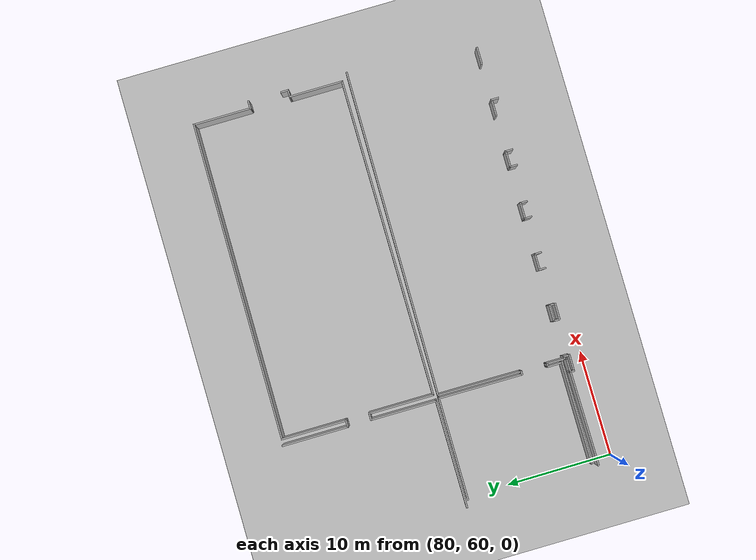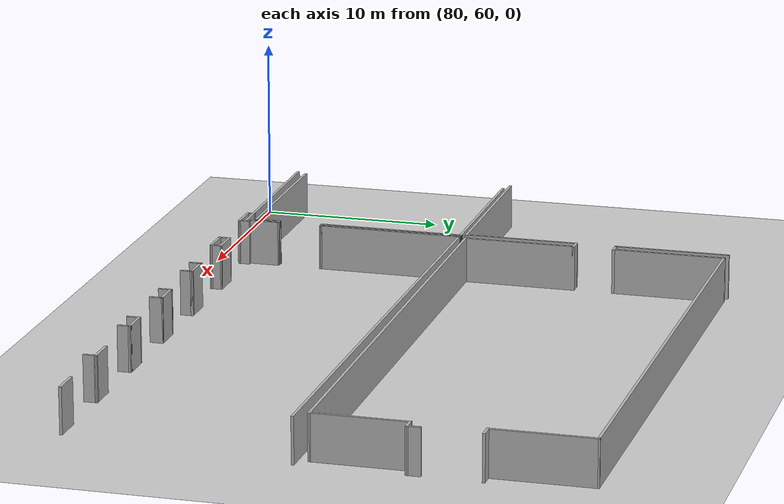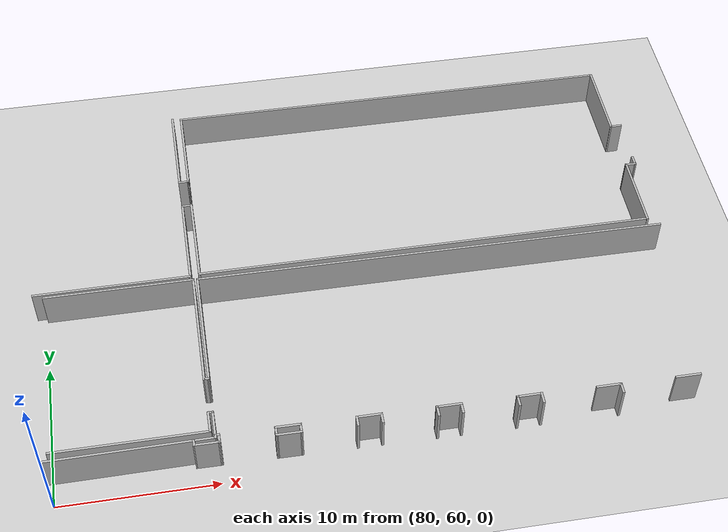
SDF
<sdf version="1.6">
 <world name="default">
  <model name="ground_plane">
   <static>1</static>
   <link name="link">
    <collision name="collision">
     <geometry><plane><normal>0 0 1</normal><size>200 100</size></plane></geometry>
     <surface><friction><ode><mu>100</mu><mu2>50</mu2></ode></friction></surface>
    </collision>
    <visual name="visual">
     <cast_shadows>0</cast_shadows>
     <geometry><plane><normal>0 0 1</normal><size>200 100</size></plane></geometry>
     <material>
      <script><uri>file://media/materials/scripts/gazebo.material</uri><name>Gazebo/Grey</name></script>
     </material>
    </visual>
   </link>
  </model>
  <model name="vgke_production">
   <link name="Wall_242">
    <pose>-13.7532 14.7543 0 0 -0 0</pose>
    <visual name="Wall_242_Visual">
     <pose>0 0 1.25 0 -0 0</pose>
     <geometry><box><size>9.75 0.15 2.5</size></box></geometry>
    </visual>
    <collision name="Wall_242_Collision">
     <pose>0 0 1.25 0 -0 0</pose>
     <geometry><box><size>9.75 0.15 2.5</size></box></geometry>
    </collision>
    <inertial>
     <inertia><ixx>1</ixx><ixy>0</ixy><ixz>0</ixz><iyy>1</iyy><iyz>0</iyz><izz>1</izz></inertia>
     <mass>1</mass>
    </inertial>
   </link>
   <link name="Wall_243">
    <pose>-8.95321 15.4293 0 0 -0 1.5708</pose>
    <visual name="Wall_243_Visual">
     <pose>0 0 1.25 0 -0 0</pose>
     <geometry><box><size>1.5 0.15 2.5</size></box></geometry>
    </visual>
    <collision name="Wall_243_Collision">
     <pose>0 0 1.25 0 -0 0</pose>
     <geometry><box><size>1.5 0.15 2.5</size></box></geometry>
    </collision>
    <inertial>
     <inertia><ixx>1</ixx><ixy>0</ixy><ixz>0</ixz><iyy>1</iyy><iyz>0</iyz><izz>1</izz></inertia>
     <mass>1</mass>
    </inertial>
   </link>
   <link name="Wall_244">
    <pose>-8.81949 16.1031 0 0 0 -0.009091</pose>
    <visual name="Wall_244_Visual">
     <pose>0 0 1.25 0 -0 0</pose>
     <geometry><box><size>0.417445 0.15 2.5</size></box></geometry>
    </visual>
    <collision name="Wall_244_Collision">
     <pose>0 0 1.25 0 -0 0</pose>
     <geometry><box><size>0.417445 0.15 2.5</size></box></geometry>
    </collision>
    <inertial>
     <inertia><ixx>1</ixx><ixy>0</ixy><ixz>0</ixz><iyy>1</iyy><iyz>0</iyz><izz>1</izz></inertia>
     <mass>1</mass>
    </inertial>
   </link>
   <link name="Wall_245">
    <pose>-8.68736 15.1888 0 0 0 -1.57253</pose>
    <visual name="Wall_245_Visual">
     <pose>0 0 1.25 0 -0 0</pose>
     <geometry><box><size>1.97616 0.15 2.5</size></box></geometry>
    </visual>
    <collision name="Wall_245_Collision">
     <pose>0 0 1.25 0 -0 0</pose>
     <geometry><box><size>1.97616 0.15 2.5</size></box></geometry>
    </collision>
    <inertial>
     <inertia><ixx>1</ixx><ixy>0</ixy><ixz>0</ixz><iyy>1</iyy><iyz>0</iyz><izz>1</izz></inertia>
     <mass>1</mass>
    </inertial>
   </link>
   <link name="Wall_247">
    <pose>-13.7798 14.2411 0 0 0 -3.1348</pose>
    <visual name="Wall_247_Visual">
     <pose>0 0 1.25 0 -0 0</pose>
     <geometry><box><size>10.332 0.15 2.5</size></box></geometry>
    </visual>
    <collision name="Wall_247_Collision">
     <pose>0 0 1.25 0 -0 0</pose>
     <geometry><box><size>10.332 0.15 2.5</size></box></geometry>
    </collision>
    <inertial>
     <inertia><ixx>1</ixx><ixy>0</ixy><ixz>0</ixz><iyy>1</iyy><iyz>0</iyz><izz>1</izz></inertia>
     <mass>1</mass>
    </inertial>
   </link>
   <link name="Wall_259">
    <pose>-14.145 26.8509 0 0 -0 0</pose>
    <visual name="Wall_259_Visual">
     <pose>0 0 1.25 0 -0 0</pose>
     <geometry><box><size>10.25 0.15 2.5</size></box></geometry>
    </visual>
    <collision name="Wall_259_Collision">
     <pose>0 0 1.25 0 -0 0</pose>
     <geometry><box><size>10.25 0.15 2.5</size></box></geometry>
    </collision>
    <inertial>
     <inertia><ixx>1</ixx><ixy>0</ixy><ixz>0</ixz><iyy>1</iyy><iyz>0</iyz><izz>1</izz></inertia>
     <mass>1</mass>
    </inertial>
   </link>
   <link name="Wall_263">
    <pose>-9.09463 29.9565 0 0 -0 1.57067</pose>
    <visual name="Wall_263_Visual">
     <pose>0 0 1.25 0 -0 0</pose>
     <geometry><box><size>6.36125 0.15 2.5</size></box></geometry>
    </visual>
    <collision name="Wall_263_Collision">
     <pose>0 0 1.25 0 -0 0</pose>
     <geometry><box><size>6.36125 0.15 2.5</size></box></geometry>
    </collision>
    <inertial>
     <inertia><ixx>1</ixx><ixy>0</ixy><ixz>0</ixz><iyy>1</iyy><iyz>0</iyz><izz>1</izz></inertia>
     <mass>1</mass>
    </inertial>
   </link>
   <link name="Wall_265">
    <pose>-8.79423 33.0621 0 0 -0 0</pose>
    <visual name="Wall_265_Visual">
     <pose>0 0 1.25 0 -0 0</pose>
     <geometry><box><size>0.75 0.15 2.5</size></box></geometry>
    </visual>
    <collision name="Wall_265_Collision">
     <pose>0 0 1.25 0 -0 0</pose>
     <geometry><box><size>0.75 0.15 2.5</size></box></geometry>
    </collision>
    <inertial>
     <inertia><ixx>1</ixx><ixy>0</ixy><ixz>0</ixz><iyy>1</iyy><iyz>0</iyz><izz>1</izz></inertia>
     <mass>1</mass>
    </inertial>
   </link>
   <link name="Wall_267">
    <pose>-8.49423 30.0121 0 0 0 -1.5708</pose>
    <visual name="Wall_267_Visual">
     <pose>0 0 1.25 0 -0 0</pose>
     <geometry><box><size>6.25 0.15 2.5</size></box></geometry>
    </visual>
    <collision name="Wall_267_Collision">
     <pose>0 0 1.25 0 -0 0</pose>
     <geometry><box><size>6.25 0.15 2.5</size></box></geometry>
    </collision>
    <inertial>
     <inertia><ixx>1</ixx><ixy>0</ixy><ixz>0</ixz><iyy>1</iyy><iyz>0</iyz><izz>1</izz></inertia>
     <mass>1</mass>
    </inertial>
   </link>
   <link name="Wall_268">
    <pose>6.55577 26.9621 0 0 -0 0</pose>
    <visual name="Wall_268_Visual">
     <pose>0 0 1.25 0 -0 0</pose>
     <geometry><box><size>30.25 0.15 2.5</size></box></geometry>
    </visual>
    <collision name="Wall_268_Collision">
     <pose>0 0 1.25 0 -0 0</pose>
     <geometry><box><size>30.25 0.15 2.5</size></box></geometry>
    </collision>
    <inertial>
     <inertia><ixx>1</ixx><ixy>0</ixy><ixz>0</ixz><iyy>1</iyy><iyz>0</iyz><izz>1</izz></inertia>
     <mass>1</mass>
    </inertial>
   </link>
   <link name="Wall_271">
    <pose>21.6031 29.4788 0 0 -0 1.57186</pose>
    <visual name="Wall_271_Visual">
     <pose>0 0 1.25 0 -0 0</pose>
     <geometry><box><size>5.18328 0.15 2.5</size></box></geometry>
    </visual>
    <collision name="Wall_271_Collision">
     <pose>0 0 1.25 0 -0 0</pose>
     <geometry><box><size>5.18328 0.15 2.5</size></box></geometry>
    </collision>
    <inertial>
     <inertia><ixx>1</ixx><ixy>0</ixy><ixz>0</ixz><iyy>1</iyy><iyz>0</iyz><izz>1</izz></inertia>
     <mass>1</mass>
    </inertial>
   </link>
   <link name="Wall_273">
    <pose>21.9117 31.995 0 0 0 -0.001167</pose>
    <visual name="Wall_273_Visual">
     <pose>0 0 1.25 0 -0 0</pose>
     <geometry><box><size>0.77253 0.15 2.5</size></box></geometry>
    </visual>
    <collision name="Wall_273_Collision">
     <pose>0 0 1.25 0 -0 0</pose>
     <geometry><box><size>0.77253 0.15 2.5</size></box></geometry>
    </collision>
    <inertial>
     <inertia><ixx>1</ixx><ixy>0</ixy><ixz>0</ixz><iyy>1</iyy><iyz>0</iyz><izz>1</izz></inertia>
     <mass>1</mass>
    </inertial>
   </link>
   <link name="Wall_293">
    <pose>6.80106 26.4354 0 0 -0 3.13474</pose>
    <visual name="Wall_293_Visual">
     <pose>0 0 1.25 0 -0 0</pose>
     <geometry><box><size>31.0776 0.15 2.5</size></box></geometry>
    </visual>
    <collision name="Wall_293_Collision">
     <pose>0 0 1.25 0 -0 0</pose>
     <geometry><box><size>31.0776 0.15 2.5</size></box></geometry>
    </collision>
    <inertial>
     <inertia><ixx>1</ixx><ixy>0</ixy><ixz>0</ixz><iyy>1</iyy><iyz>0</iyz><izz>1</izz></inertia>
     <mass>1</mass>
    </inertial>
   </link>
   <link name="Wall_303">
    <pose>-8.67589 22.5676 0 0 0 -1.5742</pose>
    <visual name="Wall_303_Visual">
     <pose>0 0 1.25 0 -0 0</pose>
     <geometry><box><size>8.09771 0.15 2.5</size></box></geometry>
    </visual>
    <collision name="Wall_303_Collision">
     <pose>0 0 1.25 0 -0 0</pose>
     <geometry><box><size>8.09771 0.15 2.5</size></box></geometry>
    </collision>
    <inertial>
     <inertia><ixx>1</ixx><ixy>0</ixy><ixz>0</ixz><iyy>1</iyy><iyz>0</iyz><izz>1</izz></inertia>
     <mass>1</mass>
    </inertial>
   </link>
   <link name="Wall_304">
    <pose>-8.82762 18.5983 0 0 -0 3.10827</pose>
    <visual name="Wall_304_Visual">
     <pose>0 0 1.25 0 -0 0</pose>
     <geometry><box><size>0.426546 0.15 2.5</size></box></geometry>
    </visual>
    <collision name="Wall_304_Collision">
     <pose>0 0 1.25 0 -0 0</pose>
     <geometry><box><size>0.426546 0.15 2.5</size></box></geometry>
    </collision>
    <inertial>
     <inertia><ixx>1</ixx><ixy>0</ixy><ixz>0</ixz><iyy>1</iyy><iyz>0</iyz><izz>1</izz></inertia>
     <mass>1</mass>
    </inertial>
   </link>
   <link name="Wall_305">
    <pose>-8.952 22.5784 0 0 -0 1.56732</pose>
    <visual name="Wall_305_Visual">
     <pose>0 0 1.25 0 -0 0</pose>
     <geometry><box><size>8.10101 0.15 2.5</size></box></geometry>
    </visual>
    <collision name="Wall_305_Collision">
     <pose>0 0 1.25 0 -0 0</pose>
     <geometry><box><size>8.10101 0.15 2.5</size></box></geometry>
    </collision>
    <inertial>
     <inertia><ixx>1</ixx><ixy>0</ixy><ixz>0</ixz><iyy>1</iyy><iyz>0</iyz><izz>1</izz></inertia>
     <mass>1</mass>
    </inertial>
   </link>
   <link name="Wall_306">
    <pose>-13.7374 26.5629 0 0 -0 3.13971</pose>
    <visual name="Wall_306_Visual">
     <pose>0 0 1.25 0 -0 0</pose>
     <geometry><box><size>9.74851 0.15 2.5</size></box></geometry>
    </visual>
    <collision name="Wall_306_Collision">
     <pose>0 0 1.25 0 -0 0</pose>
     <geometry><box><size>9.74851 0.15 2.5</size></box></geometry>
    </collision>
    <inertial>
     <inertia><ixx>1</ixx><ixy>0</ixy><ixz>0</ixz><iyy>1</iyy><iyz>0</iyz><izz>1</izz></inertia>
     <mass>1</mass>
    </inertial>
   </link>
   <link name="Wall_358">
    <pose>-9.98131 14.1071 0 0 0 -1.57927</pose>
    <visual name="Wall_358_Visual">
     <pose>0 0 1.25 0 -0 0</pose>
     <geometry><box><size>0.483107 0.15 2.5</size></box></geometry>
    </visual>
    <collision name="Wall_358_Collision">
     <pose>0 0 1.25 0 -0 0</pose>
     <geometry><box><size>0.483107 0.15 2.5</size></box></geometry>
    </collision>
    <inertial>
     <inertia><ixx>1</ixx><ixy>0</ixy><ixz>0</ixz><iyy>1</iyy><iyz>0</iyz><izz>1</izz></inertia>
     <mass>1</mass>
    </inertial>
   </link>
   <link name="Wall_359">
    <pose>-9.23044 13.9335 0 0 0 -0.009381</pose>
    <visual name="Wall_359_Visual">
     <pose>0 0 1.25 0 -0 0</pose>
     <geometry><box><size>1.65464 0.15 2.5</size></box></geometry>
    </visual>
    <collision name="Wall_359_Collision">
     <pose>0 0 1.25 0 -0 0</pose>
     <geometry><box><size>1.65464 0.15 2.5</size></box></geometry>
    </collision>
    <inertial>
     <inertia><ixx>1</ixx><ixy>0</ixy><ixz>0</ixz><iyy>1</iyy><iyz>0</iyz><izz>1</izz></inertia>
     <mass>1</mass>
    </inertial>
   </link>
   <link name="Wall_360">
    <pose>-8.47815 14.1847 0 0 -0 1.5708</pose>
    <visual name="Wall_360_Visual">
     <pose>0 0 1.25 0 -0 0</pose>
     <geometry><box><size>0.666588 0.15 2.5</size></box></geometry>
    </visual>
    <collision name="Wall_360_Collision">
     <pose>0 0 1.25 0 -0 0</pose>
     <geometry><box><size>0.666588 0.15 2.5</size></box></geometry>
    </collision>
    <inertial>
     <inertia><ixx>1</ixx><ixy>0</ixy><ixz>0</ixz><iyy>1</iyy><iyz>0</iyz><izz>1</izz></inertia>
     <mass>1</mass>
    </inertial>
   </link>
   <link name="Wall_361">
    <pose>-8.5826 14.443 0 0 -0 3.14159</pose>
    <visual name="Wall_361_Visual">
     <pose>0 0 1.25 0 -0 0</pose>
     <geometry><box><size>0.35889 0.15 2.5</size></box></geometry>
    </visual>
    <collision name="Wall_361_Collision">
     <pose>0 0 1.25 0 -0 0</pose>
     <geometry><box><size>0.35889 0.15 2.5</size></box></geometry>
    </collision>
    <inertial>
     <inertia><ixx>1</ixx><ixy>0</ixy><ixz>0</ixz><iyy>1</iyy><iyz>0</iyz><izz>1</izz></inertia>
     <mass>1</mass>
    </inertial>
   </link>
   <link name="Wall_363">
    <pose>-5.07672 14.1384 0 0 0 -1.58284</pose>
    <visual name="Wall_363_Visual">
     <pose>0 0 1.25 0 -0 0</pose>
     <geometry><box><size>0.685877 0.15 2.5</size></box></geometry>
    </visual>
    <collision name="Wall_363_Collision">
     <pose>0 0 1.25 0 -0 0</pose>
     <geometry><box><size>0.685877 0.15 2.5</size></box></geometry>
    </collision>
    <inertial>
     <inertia><ixx>1</ixx><ixy>0</ixy><ixz>0</ixz><iyy>1</iyy><iyz>0</iyz><izz>1</izz></inertia>
     <mass>1</mass>
    </inertial>
   </link>
   <link name="Wall_364">
    <pose>-4.3343 13.864 0 0 0 -0.008658</pose>
    <visual name="Wall_364_Visual">
     <pose>0 0 1.25 0 -0 0</pose>
     <geometry><box><size>1.64153 0.15 2.5</size></box></geometry>
    </visual>
    <collision name="Wall_364_Collision">
     <pose>0 0 1.25 0 -0 0</pose>
     <geometry><box><size>1.64153 0.15 2.5</size></box></geometry>
    </collision>
    <inertial>
     <inertia><ixx>1</ixx><ixy>0</ixy><ixz>0</ixz><iyy>1</iyy><iyz>0</iyz><izz>1</izz></inertia>
     <mass>1</mass>
    </inertial>
   </link>
   <link name="Wall_365">
    <pose>-3.58864 14.1255 0 0 -0 1.5708</pose>
    <visual name="Wall_365_Visual">
     <pose>0 0 1.25 0 -0 0</pose>
     <geometry><box><size>0.685838 0.15 2.5</size></box></geometry>
    </visual>
    <collision name="Wall_365_Collision">
     <pose>0 0 1.25 0 -0 0</pose>
     <geometry><box><size>0.685838 0.15 2.5</size></box></geometry>
    </collision>
    <inertial>
     <inertia><ixx>1</ixx><ixy>0</ixy><ixz>0</ixz><iyy>1</iyy><iyz>0</iyz><izz>1</izz></inertia>
     <mass>1</mass>
    </inertial>
   </link>
   <link name="Wall_366">
    <pose>-4.33107 14.3999 0 0 -0 3.1329</pose>
    <visual name="Wall_366_Visual">
     <pose>0 0 1.25 0 -0 0</pose>
     <geometry><box><size>1.63508 0.15 2.5</size></box></geometry>
    </visual>
    <collision name="Wall_366_Collision">
     <pose>0 0 1.25 0 -0 0</pose>
     <geometry><box><size>1.63508 0.15 2.5</size></box></geometry>
    </collision>
    <inertial>
     <inertia><ixx>1</ixx><ixy>0</ixy><ixz>0</ixz><iyy>1</iyy><iyz>0</iyz><izz>1</izz></inertia>
     <mass>1</mass>
    </inertial>
   </link>
   <link name="Wall_377">
    <pose>-0.18486 14.0719 0 0 0 -1.5708</pose>
    <visual name="Wall_377_Visual">
     <pose>0 0 1.25 0 -0 0</pose>
     <geometry><box><size>0.698861 0.15 2.5</size></box></geometry>
    </visual>
    <collision name="Wall_377_Collision">
     <pose>0 0 1.25 0 -0 0</pose>
     <geometry><box><size>0.698861 0.15 2.5</size></box></geometry>
    </collision>
    <inertial>
     <inertia><ixx>1</ixx><ixy>0</ixy><ixz>0</ixz><iyy>1</iyy><iyz>0</iyz><izz>1</izz></inertia>
     <mass>1</mass>
    </inertial>
   </link>
   <link name="Wall_380">
    <pose>0.562996 14.3464 0 0 -0 0</pose>
    <visual name="Wall_380_Visual">
     <pose>0 0 1.25 0 -0 0</pose>
     <geometry><box><size>1.64573 0.15 2.5</size></box></geometry>
    </visual>
    <collision name="Wall_380_Collision">
     <pose>0 0 1.25 0 -0 0</pose>
     <geometry><box><size>1.64573 0.15 2.5</size></box></geometry>
    </collision>
    <inertial>
     <inertia><ixx>1</ixx><ixy>0</ixy><ixz>0</ixz><iyy>1</iyy><iyz>0</iyz><izz>1</izz></inertia>
     <mass>1</mass>
    </inertial>
   </link>
   <link name="Wall_382">
    <pose>1.31086 14.0623 0 0 0 -1.5708</pose>
    <visual name="Wall_382_Visual">
     <pose>0 0 1.25 0 -0 0</pose>
     <geometry><box><size>0.718563 0.15 2.5</size></box></geometry>
    </visual>
    <collision name="Wall_382_Collision">
     <pose>0 0 1.25 0 -0 0</pose>
     <geometry><box><size>0.718563 0.15 2.5</size></box></geometry>
    </collision>
    <inertial>
     <inertia><ixx>1</ixx><ixy>0</ixy><ixz>0</ixz><iyy>1</iyy><iyz>0</iyz><izz>1</izz></inertia>
     <mass>1</mass>
    </inertial>
   </link>
   <link name="Wall_385">
    <pose>4.7105 13.9982 0 0 0 -1.5708</pose>
    <visual name="Wall_385_Visual">
     <pose>0 0 1.25 0 -0 0</pose>
     <geometry><box><size>0.75 0.15 2.5</size></box></geometry>
    </visual>
    <collision name="Wall_385_Collision">
     <pose>0 0 1.25 0 -0 0</pose>
     <geometry><box><size>0.75 0.15 2.5</size></box></geometry>
    </collision>
    <inertial>
     <inertia><ixx>1</ixx><ixy>0</ixy><ixz>0</ixz><iyy>1</iyy><iyz>0</iyz><izz>1</izz></inertia>
     <mass>1</mass>
    </inertial>
   </link>
   <link name="Wall_387">
    <pose>6.19535 13.9978 0 0 -0 1.5708</pose>
    <visual name="Wall_387_Visual">
     <pose>0 0 1.25 0 -0 0</pose>
     <geometry><box><size>0.75 0.15 2.5</size></box></geometry>
    </visual>
    <collision name="Wall_387_Collision">
     <pose>0 0 1.25 0 -0 0</pose>
     <geometry><box><size>0.75 0.15 2.5</size></box></geometry>
    </collision>
    <inertial>
     <inertia><ixx>1</ixx><ixy>0</ixy><ixz>0</ixz><iyy>1</iyy><iyz>0</iyz><izz>1</izz></inertia>
     <mass>1</mass>
    </inertial>
   </link>
   <link name="Wall_388">
    <pose>5.45292 14.298 0 0 -0 3.14133</pose>
    <visual name="Wall_388_Visual">
     <pose>0 0 1.25 0 -0 0</pose>
     <geometry><box><size>1.63485 0.15 2.5</size></box></geometry>
    </visual>
    <collision name="Wall_388_Collision">
     <pose>0 0 1.25 0 -0 0</pose>
     <geometry><box><size>1.63485 0.15 2.5</size></box></geometry>
    </collision>
    <inertial>
     <inertia><ixx>1</ixx><ixy>0</ixy><ixz>0</ixz><iyy>1</iyy><iyz>0</iyz><izz>1</izz></inertia>
     <mass>1</mass>
    </inertial>
   </link>
   <link name="Wall_390">
    <pose>9.67241 13.9451 0 0 0 -1.5708</pose>
    <visual name="Wall_390_Visual">
     <pose>0 0 1.25 0 -0 0</pose>
     <geometry><box><size>0.75 0.15 2.5</size></box></geometry>
    </visual>
    <collision name="Wall_390_Collision">
     <pose>0 0 1.25 0 -0 0</pose>
     <geometry><box><size>0.75 0.15 2.5</size></box></geometry>
    </collision>
    <inertial>
     <inertia><ixx>1</ixx><ixy>0</ixy><ixz>0</ixz><iyy>1</iyy><iyz>0</iyz><izz>1</izz></inertia>
     <mass>1</mass>
    </inertial>
   </link>
   <link name="Wall_392">
    <pose>11.1648 13.9461 0 0 -0 1.5708</pose>
    <visual name="Wall_392_Visual">
     <pose>0 0 1.25 0 -0 0</pose>
     <geometry><box><size>0.75 0.15 2.5</size></box></geometry>
    </visual>
    <collision name="Wall_392_Collision">
     <pose>0 0 1.25 0 -0 0</pose>
     <geometry><box><size>0.75 0.15 2.5</size></box></geometry>
    </collision>
    <inertial>
     <inertia><ixx>1</ixx><ixy>0</ixy><ixz>0</ixz><iyy>1</iyy><iyz>0</iyz><izz>1</izz></inertia>
     <mass>1</mass>
    </inertial>
   </link>
   <link name="Wall_393">
    <pose>10.4186 14.2456 0 0 0 -3.14088</pose>
    <visual name="Wall_393_Visual">
     <pose>0 0 1.25 0 -0 0</pose>
     <geometry><box><size>1.64243 0.15 2.5</size></box></geometry>
    </visual>
    <collision name="Wall_393_Collision">
     <pose>0 0 1.25 0 -0 0</pose>
     <geometry><box><size>1.64243 0.15 2.5</size></box></geometry>
    </collision>
    <inertial>
     <inertia><ixx>1</ixx><ixy>0</ixy><ixz>0</ixz><iyy>1</iyy><iyz>0</iyz><izz>1</izz></inertia>
     <mass>1</mass>
    </inertial>
   </link>
   <link name="Wall_404">
    <pose>16.1134 13.8578 0 0 -0 1.5708</pose>
    <visual name="Wall_404_Visual">
     <pose>0 0 1.25 0 -0 0</pose>
     <geometry><box><size>0.75 0.15 2.5</size></box></geometry>
    </visual>
    <collision name="Wall_404_Collision">
     <pose>0 0 1.25 0 -0 0</pose>
     <geometry><box><size>0.75 0.15 2.5</size></box></geometry>
    </collision>
    <inertial>
     <inertia><ixx>1</ixx><ixy>0</ixy><ixz>0</ixz><iyy>1</iyy><iyz>0</iyz><izz>1</izz></inertia>
     <mass>1</mass>
    </inertial>
   </link>
   <link name="Wall_405">
    <pose>15.377 14.1572 0 0 0 -3.14087</pose>
    <visual name="Wall_405_Visual">
     <pose>0 0 1.25 0 -0 0</pose>
     <geometry><box><size>1.62279 0.15 2.5</size></box></geometry>
    </visual>
    <collision name="Wall_405_Collision">
     <pose>0 0 1.25 0 -0 0</pose>
     <geometry><box><size>1.62279 0.15 2.5</size></box></geometry>
    </collision>
    <inertial>
     <inertia><ixx>1</ixx><ixy>0</ixy><ixz>0</ixz><iyy>1</iyy><iyz>0</iyz><izz>1</izz></inertia>
     <mass>1</mass>
    </inertial>
   </link>
   <link name="Wall_410">
    <pose>20.3747 14.0983 0 0 0 -3.14088</pose>
    <visual name="Wall_410_Visual">
     <pose>0 0 1.25 0 -0 0</pose>
     <geometry><box><size>1.64243 0.15 2.5</size></box></geometry>
    </visual>
    <collision name="Wall_410_Collision">
     <pose>0 0 1.25 0 -0 0</pose>
     <geometry><box><size>1.64243 0.15 2.5</size></box></geometry>
    </collision>
    <inertial>
     <inertia><ixx>1</ixx><ixy>0</ixy><ixz>0</ixz><iyy>1</iyy><iyz>0</iyz><izz>1</izz></inertia>
     <mass>1</mass>
    </inertial>
   </link>
   <link name="Wall_570">
    <pose>21.9147 35.8049 0 0 -0 3.14159</pose>
    <visual name="Wall_570_Visual">
     <pose>0 0 1.25 0 -0 0</pose>
     <geometry><box><size>0.835005 0.15 2.5</size></box></geometry>
    </visual>
    <collision name="Wall_570_Collision">
     <pose>0 0 1.25 0 -0 0</pose>
     <geometry><box><size>0.835005 0.15 2.5</size></box></geometry>
    </collision>
    <inertial>
     <inertia><ixx>1</ixx><ixy>0</ixy><ixz>0</ixz><iyy>1</iyy><iyz>0</iyz><izz>1</izz></inertia>
     <mass>1</mass>
    </inertial>
   </link>
   <link name="Wall_571">
    <pose>21.5683 38.51 0 0 -0 1.57223</pose>
    <visual name="Wall_571_Visual">
     <pose>0 0 1.25 0 -0 0</pose>
     <geometry><box><size>5.56027 0.15 2.5</size></box></geometry>
    </visual>
    <collision name="Wall_571_Collision">
     <pose>0 0 1.25 0 -0 0</pose>
     <geometry><box><size>5.56027 0.15 2.5</size></box></geometry>
    </collision>
    <inertial>
     <inertia><ixx>1</ixx><ixy>0</ixy><ixz>0</ixz><iyy>1</iyy><iyz>0</iyz><izz>1</izz></inertia>
     <mass>1</mass>
    </inertial>
   </link>
   <link name="Wall_573">
    <pose>6.52701 41.3022 0 0 -0 3.13581</pose>
    <visual name="Wall_573_Visual">
     <pose>0 0 1.25 0 -0 0</pose>
     <geometry><box><size>30.2256 0.15 2.5</size></box></geometry>
    </visual>
    <collision name="Wall_573_Collision">
     <pose>0 0 1.25 0 -0 0</pose>
     <geometry><box><size>30.2256 0.15 2.5</size></box></geometry>
    </collision>
    <inertial>
     <inertia><ixx>1</ixx><ixy>0</ixy><ixz>0</ixz><iyy>1</iyy><iyz>0</iyz><izz>1</izz></inertia>
     <mass>1</mass>
    </inertial>
   </link>
   <link name="Wall_580">
    <pose>-8.51042 38.3392 0 0 0 -1.5708</pose>
    <visual name="Wall_580_Visual">
     <pose>0 0 1.25 0 -0 0</pose>
     <geometry><box><size>6.25 0.15 2.5</size></box></geometry>
    </visual>
    <collision name="Wall_580_Collision">
     <pose>0 0 1.25 0 -0 0</pose>
     <geometry><box><size>6.25 0.15 2.5</size></box></geometry>
    </collision>
    <inertial>
     <inertia><ixx>1</ixx><ixy>0</ixy><ixz>0</ixz><iyy>1</iyy><iyz>0</iyz><izz>1</izz></inertia>
     <mass>1</mass>
    </inertial>
   </link>
   <link name="Wall_581">
    <pose>-8.81042 35.2892 0 0 -0 3.14159</pose>
    <visual name="Wall_581_Visual">
     <pose>0 0 1.25 0 -0 0</pose>
     <geometry><box><size>0.75 0.15 2.5</size></box></geometry>
    </visual>
    <collision name="Wall_581_Collision">
     <pose>0 0 1.25 0 -0 0</pose>
     <geometry><box><size>0.75 0.15 2.5</size></box></geometry>
    </collision>
    <inertial>
     <inertia><ixx>1</ixx><ixy>0</ixy><ixz>0</ixz><iyy>1</iyy><iyz>0</iyz><izz>1</izz></inertia>
     <mass>1</mass>
    </inertial>
   </link>
   <link name="Wall_582">
    <pose>-9.11111 38.3926 0 0 -0 1.57102</pose>
    <visual name="Wall_582_Visual">
     <pose>0 0 1.25 0 -0 0</pose>
     <geometry><box><size>6.35671 0.15 2.5</size></box></geometry>
    </visual>
    <collision name="Wall_582_Collision">
     <pose>0 0 1.25 0 -0 0</pose>
     <geometry><box><size>6.35671 0.15 2.5</size></box></geometry>
    </collision>
    <inertial>
     <inertia><ixx>1</ixx><ixy>0</ixy><ixz>0</ixz><iyy>1</iyy><iyz>0</iyz><izz>1</izz></inertia>
     <mass>1</mass>
    </inertial>
   </link>
   <link name="Wall_604">
    <pose>22.2214 32.3136 0 0 -0 1.57555</pose>
    <visual name="Wall_604_Visual">
     <pose>0 0 1.25 0 -0 0</pose>
     <geometry><box><size>0.787857 0.15 2.5</size></box></geometry>
    </visual>
    <collision name="Wall_604_Collision">
     <pose>0 0 1.25 0 -0 0</pose>
     <geometry><box><size>0.787857 0.15 2.5</size></box></geometry>
    </collision>
    <inertial>
     <inertia><ixx>1</ixx><ixy>0</ixy><ixz>0</ixz><iyy>1</iyy><iyz>0</iyz><izz>1</izz></inertia>
     <mass>1</mass>
    </inertial>
   </link>
   <pose>98.6 47.426 0.01 0 0 0</pose>
  </model>
 </world>
</sdf>
